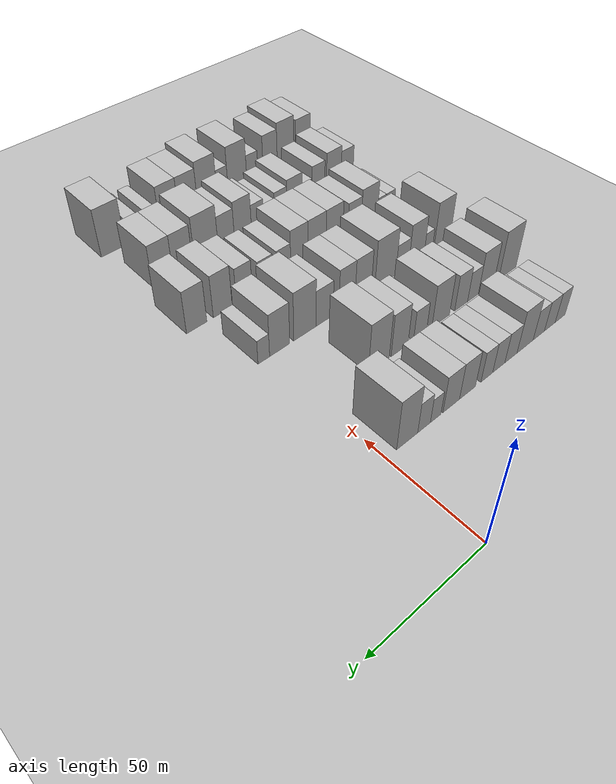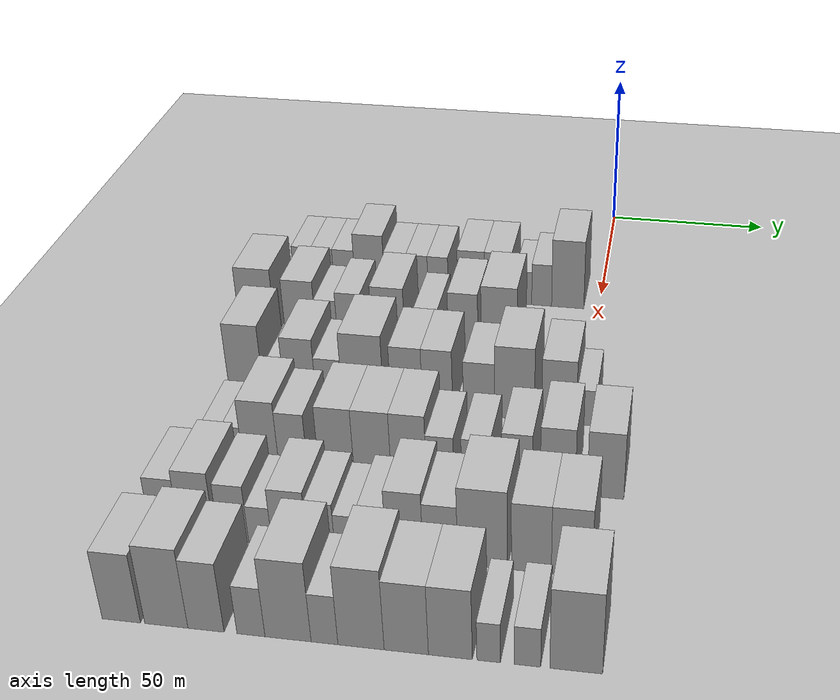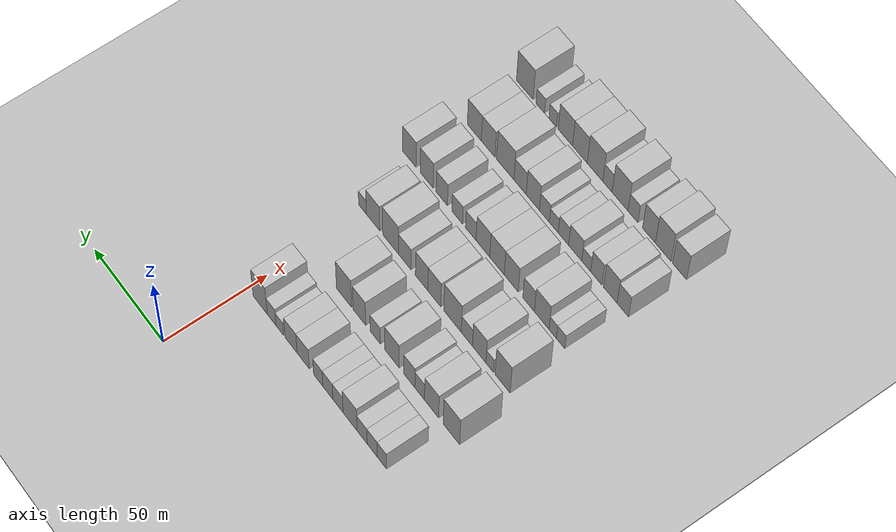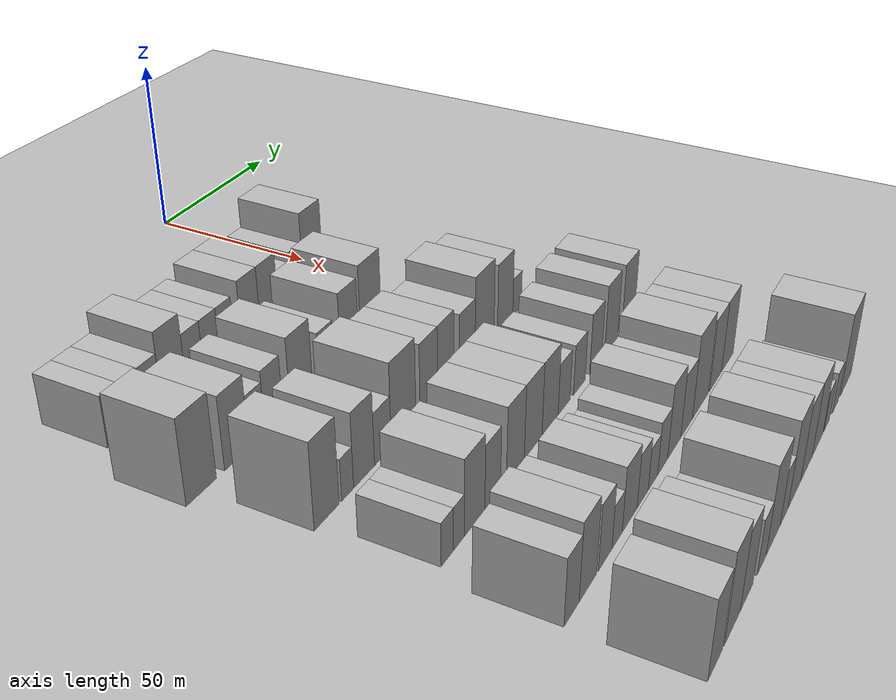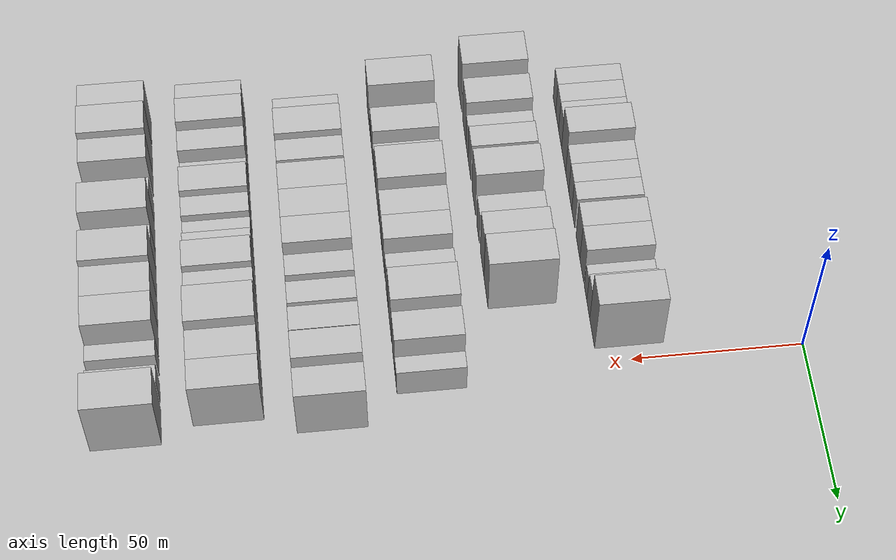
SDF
<sdf version="1.6">
 <world name="default">
  <include><name>ground_plane_1</name><uri>model://HANNAS_ground_plane</uri></include>
  <include>
   <name>ground_plane_2</name>
   <uri>model://HANNAS_ground_plane</uri>
   <pose>100 0 0  0 0 0</pose>
  </include>
  <model name="building_49">
   <static>1</static>
   <pose>50.0000 -92.9644 0 0.000000 0.000000 0.000000</pose>
   <link name="link">
    <pose>0 0 7.50 0 0 0</pose>
    <collision name="collision"><geometry><box><size>20.0000 6.2132 15.0000</size></box></geometry></collision>
    <visual name="visual">
     <cast_shadows>0</cast_shadows>
     <geometry><box><size>20.0000 6.2132 15.0000</size></box></geometry>
     <material>
      <script>
       <uri>model://HANNAS_wall/materials/scripts</uri>
       <uri>model://HANNAS_wall/materials/textures</uri>
       <name>vrc/HANNAS_wall</name>
      </script>
     </material>
    </visual>
   </link>
  </model>
  <model name="building_50">
   <static>1</static>
   <pose>50.0000 -86.5082 0 0.000000 0.000000 0.000000</pose>
   <link name="link">
    <pose>0 0 7.50 0 0 0</pose>
    <collision name="collision"><geometry><box><size>20.0000 6.6991 15.0000</size></box></geometry></collision>
    <visual name="visual">
     <cast_shadows>0</cast_shadows>
     <geometry><box><size>20.0000 6.6991 15.0000</size></box></geometry>
     <material>
      <script>
       <uri>model://HANNAS_wall/materials/scripts</uri>
       <uri>model://HANNAS_wall/materials/textures</uri>
       <name>vrc/HANNAS_wall</name>
      </script>
     </material>
    </visual>
   </link>
  </model>
  <model name="building_51">
   <static>1</static>
   <pose>50.0000 -79.7621 0 0.000000 0.000000 0.000000</pose>
   <link name="link">
    <pose>0 0 7.50 0 0 0</pose>
    <collision name="collision"><geometry><box><size>20.0000 6.7931 15.0000</size></box></geometry></collision>
    <visual name="visual">
     <cast_shadows>0</cast_shadows>
     <geometry><box><size>20.0000 6.7931 15.0000</size></box></geometry>
     <material>
      <script>
       <uri>model://HANNAS_wall/materials/scripts</uri>
       <uri>model://HANNAS_wall/materials/textures</uri>
       <name>vrc/HANNAS_wall</name>
      </script>
     </material>
    </visual>
   </link>
  </model>
  <model name="building_52">
   <static>1</static>
   <pose>50.0000 -71.6376 0 0.000000 0.000000 0.000000</pose>
   <link name="link">
    <pose>0 0 10.50 0 0 0</pose>
    <collision name="collision"><geometry><box><size>20.0000 9.4559 21.0000</size></box></geometry></collision>
    <visual name="visual">
     <cast_shadows>0</cast_shadows>
     <geometry><box><size>20.0000 9.4559 21.0000</size></box></geometry>
     <material>
      <script>
       <uri>model://HANNAS_wall/materials/scripts</uri>
       <uri>model://HANNAS_wall/materials/textures</uri>
       <name>vrc/HANNAS_wall</name>
      </script>
     </material>
    </visual>
   </link>
  </model>
  <model name="building_53">
   <static>1</static>
   <pose>50.0000 -63.3880 0 0.000000 0.000000 0.000000</pose>
   <link name="link">
    <pose>0 0 7.50 0 0 0</pose>
    <collision name="collision"><geometry><box><size>20.0000 7.0434 15.0000</size></box></geometry></collision>
    <visual name="visual">
     <cast_shadows>0</cast_shadows>
     <geometry><box><size>20.0000 7.0434 15.0000</size></box></geometry>
     <material>
      <script>
       <uri>model://HANNAS_wall/materials/scripts</uri>
       <uri>model://HANNAS_wall/materials/textures</uri>
       <name>vrc/HANNAS_wall</name>
      </script>
     </material>
    </visual>
   </link>
  </model>
  <model name="building_54">
   <static>1</static>
   <pose>50.0000 -56.5029 0 0.000000 0.000000 0.000000</pose>
   <link name="link">
    <pose>0 0 7.50 0 0 0</pose>
    <collision name="collision"><geometry><box><size>20.0000 6.7269 15.0000</size></box></geometry></collision>
    <visual name="visual">
     <cast_shadows>0</cast_shadows>
     <geometry><box><size>20.0000 6.7269 15.0000</size></box></geometry>
     <material>
      <script>
       <uri>model://HANNAS_wall/materials/scripts</uri>
       <uri>model://HANNAS_wall/materials/textures</uri>
       <name>vrc/HANNAS_wall</name>
      </script>
     </material>
    </visual>
   </link>
  </model>
  <model name="building_55">
   <static>1</static>
   <pose>50.0000 -49.9407 0 0.000000 0.000000 0.000000</pose>
   <link name="link">
    <pose>0 0 7.50 0 0 0</pose>
    <collision name="collision"><geometry><box><size>20.0000 6.3974 15.0000</size></box></geometry></collision>
    <visual name="visual">
     <cast_shadows>0</cast_shadows>
     <geometry><box><size>20.0000 6.3974 15.0000</size></box></geometry>
     <material>
      <script>
       <uri>model://HANNAS_wall/materials/scripts</uri>
       <uri>model://HANNAS_wall/materials/textures</uri>
       <name>vrc/HANNAS_wall</name>
      </script>
     </material>
    </visual>
   </link>
  </model>
  <model name="building_56">
   <static>1</static>
   <pose>50.0000 -39.5400 0 0.000000 0.000000 0.000000</pose>
   <link name="link">
    <pose>0 0 9.00 0 0 0</pose>
    <collision name="collision"><geometry><box><size>20.0000 8.4040 18.0000</size></box></geometry></collision>
    <visual name="visual">
     <cast_shadows>0</cast_shadows>
     <geometry><box><size>20.0000 8.4040 18.0000</size></box></geometry>
     <material>
      <script>
       <uri>model://HANNAS_wall/materials/scripts</uri>
       <uri>model://HANNAS_wall/materials/textures</uri>
       <name>vrc/HANNAS_wall</name>
      </script>
     </material>
    </visual>
   </link>
  </model>
  <model name="building_57">
   <static>1</static>
   <pose>50.0000 -31.1024 0 0.000000 0.000000 0.000000</pose>
   <link name="link">
    <pose>0 0 9.00 0 0 0</pose>
    <collision name="collision"><geometry><box><size>20.0000 8.4711 18.0000</size></box></geometry></collision>
    <visual name="visual">
     <cast_shadows>0</cast_shadows>
     <geometry><box><size>20.0000 8.4711 18.0000</size></box></geometry>
     <material>
      <script>
       <uri>model://HANNAS_wall/materials/scripts</uri>
       <uri>model://HANNAS_wall/materials/textures</uri>
       <name>vrc/HANNAS_wall</name>
      </script>
     </material>
    </visual>
   </link>
  </model>
  <model name="building_58">
   <static>1</static>
   <pose>50.0000 -23.2524 0 0.000000 0.000000 0.000000</pose>
   <link name="link">
    <pose>0 0 6.00 0 0 0</pose>
    <collision name="collision"><geometry><box><size>20.0000 5.2289 12.0000</size></box></geometry></collision>
    <visual name="visual">
     <cast_shadows>0</cast_shadows>
     <geometry><box><size>20.0000 5.2289 12.0000</size></box></geometry>
     <material>
      <script>
       <uri>model://HANNAS_wall/materials/scripts</uri>
       <uri>model://HANNAS_wall/materials/textures</uri>
       <name>vrc/HANNAS_wall</name>
      </script>
     </material>
    </visual>
   </link>
  </model>
  <model name="building_59">
   <static>1</static>
   <pose>50.0000 -17.5474 0 0.000000 0.000000 0.000000</pose>
   <link name="link">
    <pose>0 0 7.50 0 0 0</pose>
    <collision name="collision"><geometry><box><size>20.0000 6.1810 15.0000</size></box></geometry></collision>
    <visual name="visual">
     <cast_shadows>0</cast_shadows>
     <geometry><box><size>20.0000 6.1810 15.0000</size></box></geometry>
     <material>
      <script>
       <uri>model://HANNAS_wall/materials/scripts</uri>
       <uri>model://HANNAS_wall/materials/textures</uri>
       <name>vrc/HANNAS_wall</name>
      </script>
     </material>
    </visual>
   </link>
  </model>
  <model name="building_60">
   <static>1</static>
   <pose>50.0000 -9.4774 0 0.000000 0.000000 0.000000</pose>
   <link name="link">
    <pose>0 0 12.00 0 0 0</pose>
    <collision name="collision"><geometry><box><size>20.0000 9.9591 24.0000</size></box></geometry></collision>
    <visual name="visual">
     <cast_shadows>0</cast_shadows>
     <geometry><box><size>20.0000 9.9591 24.0000</size></box></geometry>
     <material>
      <script>
       <uri>model://HANNAS_wall/materials/scripts</uri>
       <uri>model://HANNAS_wall/materials/textures</uri>
       <name>vrc/HANNAS_wall</name>
      </script>
     </material>
    </visual>
   </link>
  </model>
  <model name="building_158">
   <static>1</static>
   <pose>79.0000 -98.8888 0 0.000000 0.000000 0.000000</pose>
   <link name="link">
    <pose>0 0 12.00 0 0 0</pose>
    <collision name="collision"><geometry><box><size>20.0000 10.8942 24.0000</size></box></geometry></collision>
    <visual name="visual">
     <cast_shadows>0</cast_shadows>
     <geometry><box><size>20.0000 10.8942 24.0000</size></box></geometry>
     <material>
      <script>
       <uri>model://HANNAS_wall/materials/scripts</uri>
       <uri>model://HANNAS_wall/materials/textures</uri>
       <name>vrc/HANNAS_wall</name>
      </script>
     </material>
    </visual>
   </link>
  </model>
  <model name="building_159">
   <static>1</static>
   <pose>79.0000 -85.7172 0 0.000000 0.000000 0.000000</pose>
   <link name="link">
    <pose>0 0 10.50 0 0 0</pose>
    <collision name="collision"><geometry><box><size>20.0000 9.4490 21.0000</size></box></geometry></collision>
    <visual name="visual">
     <cast_shadows>0</cast_shadows>
     <geometry><box><size>20.0000 9.4490 21.0000</size></box></geometry>
     <material>
      <script>
       <uri>model://HANNAS_wall/materials/scripts</uri>
       <uri>model://HANNAS_wall/materials/textures</uri>
       <name>vrc/HANNAS_wall</name>
      </script>
     </material>
    </visual>
   </link>
  </model>
  <model name="building_160">
   <static>1</static>
   <pose>79.0000 -77.7707 0 0.000000 0.000000 0.000000</pose>
   <link name="link">
    <pose>0 0 7.50 0 0 0</pose>
    <collision name="collision"><geometry><box><size>20.0000 6.4439 15.0000</size></box></geometry></collision>
    <visual name="visual">
     <cast_shadows>0</cast_shadows>
     <geometry><box><size>20.0000 6.4439 15.0000</size></box></geometry>
     <material>
      <script>
       <uri>model://HANNAS_wall/materials/scripts</uri>
       <uri>model://HANNAS_wall/materials/textures</uri>
       <name>vrc/HANNAS_wall</name>
      </script>
     </material>
    </visual>
   </link>
  </model>
  <model name="building_161">
   <static>1</static>
   <pose>79.0000 -70.8007 0 0.000000 0.000000 0.000000</pose>
   <link name="link">
    <pose>0 0 9.00 0 0 0</pose>
    <collision name="collision"><geometry><box><size>20.0000 7.4960 18.0000</size></box></geometry></collision>
    <visual name="visual">
     <cast_shadows>0</cast_shadows>
     <geometry><box><size>20.0000 7.4960 18.0000</size></box></geometry>
     <material>
      <script>
       <uri>model://HANNAS_wall/materials/scripts</uri>
       <uri>model://HANNAS_wall/materials/textures</uri>
       <name>vrc/HANNAS_wall</name>
      </script>
     </material>
    </visual>
   </link>
  </model>
  <model name="building_162">
   <static>1</static>
   <pose>79.0000 -59.1441 0 0.000000 0.000000 0.000000</pose>
   <link name="link">
    <pose>0 0 10.50 0 0 0</pose>
    <collision name="collision"><geometry><box><size>20.0000 9.8173 21.0000</size></box></geometry></collision>
    <visual name="visual">
     <cast_shadows>0</cast_shadows>
     <geometry><box><size>20.0000 9.8173 21.0000</size></box></geometry>
     <material>
      <script>
       <uri>model://HANNAS_wall/materials/scripts</uri>
       <uri>model://HANNAS_wall/materials/textures</uri>
       <name>vrc/HANNAS_wall</name>
      </script>
     </material>
    </visual>
   </link>
  </model>
  <model name="building_163">
   <static>1</static>
   <pose>79.0000 -47.7386 0 0.000000 0.000000 0.000000</pose>
   <link name="link">
    <pose>0 0 7.50 0 0 0</pose>
    <collision name="collision"><geometry><box><size>20.0000 6.9936 15.0000</size></box></geometry></collision>
    <visual name="visual">
     <cast_shadows>0</cast_shadows>
     <geometry><box><size>20.0000 6.9936 15.0000</size></box></geometry>
     <material>
      <script>
       <uri>model://HANNAS_wall/materials/scripts</uri>
       <uri>model://HANNAS_wall/materials/textures</uri>
       <name>vrc/HANNAS_wall</name>
      </script>
     </material>
    </visual>
   </link>
  </model>
  <model name="building_164">
   <static>1</static>
   <pose>79.0000 -36.8692 0 0.000000 0.000000 0.000000</pose>
   <link name="link">
    <pose>0 0 10.50 0 0 0</pose>
    <collision name="collision"><geometry><box><size>20.0000 8.7453 21.0000</size></box></geometry></collision>
    <visual name="visual">
     <cast_shadows>0</cast_shadows>
     <geometry><box><size>20.0000 8.7453 21.0000</size></box></geometry>
     <material>
      <script>
       <uri>model://HANNAS_wall/materials/scripts</uri>
       <uri>model://HANNAS_wall/materials/textures</uri>
       <name>vrc/HANNAS_wall</name>
      </script>
     </material>
    </visual>
   </link>
  </model>
  <model name="building_165">
   <static>1</static>
   <pose>79.0000 -26.2557 0 0.000000 0.000000 0.000000</pose>
   <link name="link">
    <pose>0 0 12.00 0 0 0</pose>
    <collision name="collision"><geometry><box><size>20.0000 10.4818 24.0000</size></box></geometry></collision>
    <visual name="visual">
     <cast_shadows>0</cast_shadows>
     <geometry><box><size>20.0000 10.4818 24.0000</size></box></geometry>
     <material>
      <script>
       <uri>model://HANNAS_wall/materials/scripts</uri>
       <uri>model://HANNAS_wall/materials/textures</uri>
       <name>vrc/HANNAS_wall</name>
      </script>
     </material>
    </visual>
   </link>
  </model>
  <model name="building_271">
   <static>1</static>
   <pose>108.0000 -93.1842 0 0.000000 0.000000 0.000000</pose>
   <link name="link">
    <pose>0 0 12.00 0 0 0</pose>
    <collision name="collision"><geometry><box><size>20.0000 9.9518 24.0000</size></box></geometry></collision>
    <visual name="visual">
     <cast_shadows>0</cast_shadows>
     <geometry><box><size>20.0000 9.9518 24.0000</size></box></geometry>
     <material>
      <script>
       <uri>model://HANNAS_wall/materials/scripts</uri>
       <uri>model://HANNAS_wall/materials/textures</uri>
       <name>vrc/HANNAS_wall</name>
      </script>
     </material>
    </visual>
   </link>
  </model>
  <model name="building_272">
   <static>1</static>
   <pose>108.0000 -84.7185 0 0.000000 0.000000 0.000000</pose>
   <link name="link">
    <pose>0 0 6.00 0 0 0</pose>
    <collision name="collision"><geometry><box><size>20.0000 4.9796 12.0000</size></box></geometry></collision>
    <visual name="visual">
     <cast_shadows>0</cast_shadows>
     <geometry><box><size>20.0000 4.9796 12.0000</size></box></geometry>
     <material>
      <script>
       <uri>model://HANNAS_wall/materials/scripts</uri>
       <uri>model://HANNAS_wall/materials/textures</uri>
       <name>vrc/HANNAS_wall</name>
      </script>
     </material>
    </visual>
   </link>
  </model>
  <model name="building_273">
   <static>1</static>
   <pose>108.0000 -77.7076 0 0.000000 0.000000 0.000000</pose>
   <link name="link">
    <pose>0 0 10.50 0 0 0</pose>
    <collision name="collision"><geometry><box><size>20.0000 9.0422 21.0000</size></box></geometry></collision>
    <visual name="visual">
     <cast_shadows>0</cast_shadows>
     <geometry><box><size>20.0000 9.0422 21.0000</size></box></geometry>
     <material>
      <script>
       <uri>model://HANNAS_wall/materials/scripts</uri>
       <uri>model://HANNAS_wall/materials/textures</uri>
       <name>vrc/HANNAS_wall</name>
      </script>
     </material>
    </visual>
   </link>
  </model>
  <model name="building_274">
   <static>1</static>
   <pose>108.0000 -69.4448 0 0.000000 0.000000 0.000000</pose>
   <link name="link">
    <pose>0 0 7.50 0 0 0</pose>
    <collision name="collision"><geometry><box><size>20.0000 7.4834 15.0000</size></box></geometry></collision>
    <visual name="visual">
     <cast_shadows>0</cast_shadows>
     <geometry><box><size>20.0000 7.4834 15.0000</size></box></geometry>
     <material>
      <script>
       <uri>model://HANNAS_wall/materials/scripts</uri>
       <uri>model://HANNAS_wall/materials/textures</uri>
       <name>vrc/HANNAS_wall</name>
      </script>
     </material>
    </visual>
   </link>
  </model>
  <model name="building_275">
   <static>1</static>
   <pose>108.0000 -59.8322 0 0.000000 0.000000 0.000000</pose>
   <link name="link">
    <pose>0 0 12.00 0 0 0</pose>
    <collision name="collision"><geometry><box><size>20.0000 11.7417 24.0000</size></box></geometry></collision>
    <visual name="visual">
     <cast_shadows>0</cast_shadows>
     <geometry><box><size>20.0000 11.7417 24.0000</size></box></geometry>
     <material>
      <script>
       <uri>model://HANNAS_wall/materials/scripts</uri>
       <uri>model://HANNAS_wall/materials/textures</uri>
       <name>vrc/HANNAS_wall</name>
      </script>
     </material>
    </visual>
   </link>
  </model>
  <model name="building_276">
   <static>1</static>
   <pose>108.0000 -47.5432 0 0.000000 0.000000 0.000000</pose>
   <link name="link">
    <pose>0 0 10.50 0 0 0</pose>
    <collision name="collision"><geometry><box><size>20.0000 8.8365 21.0000</size></box></geometry></collision>
    <visual name="visual">
     <cast_shadows>0</cast_shadows>
     <geometry><box><size>20.0000 8.8365 21.0000</size></box></geometry>
     <material>
      <script>
       <uri>model://HANNAS_wall/materials/scripts</uri>
       <uri>model://HANNAS_wall/materials/textures</uri>
       <name>vrc/HANNAS_wall</name>
      </script>
     </material>
    </visual>
   </link>
  </model>
  <model name="building_277">
   <static>1</static>
   <pose>108.0000 -38.8959 0 0.000000 0.000000 0.000000</pose>
   <link name="link">
    <pose>0 0 10.50 0 0 0</pose>
    <collision name="collision"><geometry><box><size>20.0000 8.4581 21.0000</size></box></geometry></collision>
    <visual name="visual">
     <cast_shadows>0</cast_shadows>
     <geometry><box><size>20.0000 8.4581 21.0000</size></box></geometry>
     <material>
      <script>
       <uri>model://HANNAS_wall/materials/scripts</uri>
       <uri>model://HANNAS_wall/materials/textures</uri>
       <name>vrc/HANNAS_wall</name>
      </script>
     </material>
    </visual>
   </link>
  </model>
  <model name="building_278">
   <static>1</static>
   <pose>108.0000 -27.3365 0 0.000000 0.000000 0.000000</pose>
   <link name="link">
    <pose>0 0 9.00 0 0 0</pose>
    <collision name="collision"><geometry><box><size>20.0000 8.6607 18.0000</size></box></geometry></collision>
    <visual name="visual">
     <cast_shadows>0</cast_shadows>
     <geometry><box><size>20.0000 8.6607 18.0000</size></box></geometry>
     <material>
      <script>
       <uri>model://HANNAS_wall/materials/scripts</uri>
       <uri>model://HANNAS_wall/materials/textures</uri>
       <name>vrc/HANNAS_wall</name>
      </script>
     </material>
    </visual>
   </link>
  </model>
  <model name="building_279">
   <static>1</static>
   <pose>108.0000 -17.5414 0 0.000000 0.000000 0.000000</pose>
   <link name="link">
    <pose>0 0 12.00 0 0 0</pose>
    <collision name="collision"><geometry><box><size>20.0000 10.9293 24.0000</size></box></geometry></collision>
    <visual name="visual">
     <cast_shadows>0</cast_shadows>
     <geometry><box><size>20.0000 10.9293 24.0000</size></box></geometry>
     <material>
      <script>
       <uri>model://HANNAS_wall/materials/scripts</uri>
       <uri>model://HANNAS_wall/materials/textures</uri>
       <name>vrc/HANNAS_wall</name>
      </script>
     </material>
    </visual>
   </link>
  </model>
  <model name="building_280">
   <static>1</static>
   <pose>108.0000 -5.3603 0 0.000000 0.000000 0.000000</pose>
   <link name="link">
    <pose>0 0 10.50 0 0 0</pose>
    <collision name="collision"><geometry><box><size>20.0000 9.4330 21.0000</size></box></geometry></collision>
    <visual name="visual">
     <cast_shadows>0</cast_shadows>
     <geometry><box><size>20.0000 9.4330 21.0000</size></box></geometry>
     <material>
      <script>
       <uri>model://HANNAS_wall/materials/scripts</uri>
       <uri>model://HANNAS_wall/materials/textures</uri>
       <name>vrc/HANNAS_wall</name>
      </script>
     </material>
    </visual>
   </link>
  </model>
  <model name="building_281">
   <static>1</static>
   <pose>108.0000 2.0335 0 0.000000 0.000000 0.000000</pose>
   <link name="link">
    <pose>0 0 6.00 0 0 0</pose>
    <collision name="collision"><geometry><box><size>20.0000 5.3545 12.0000</size></box></geometry></collision>
    <visual name="visual">
     <cast_shadows>0</cast_shadows>
     <geometry><box><size>20.0000 5.3545 12.0000</size></box></geometry>
     <material>
      <script>
       <uri>model://HANNAS_wall/materials/scripts</uri>
       <uri>model://HANNAS_wall/materials/textures</uri>
       <name>vrc/HANNAS_wall</name>
      </script>
     </material>
    </visual>
   </link>
  </model>
  <model name="building_384">
   <static>1</static>
   <pose>137.0000 -92.5873 0 0.000000 0.000000 0.000000</pose>
   <link name="link">
    <pose>0 0 6.00 0 0 0</pose>
    <collision name="collision"><geometry><box><size>20.0000 5.4943 12.0000</size></box></geometry></collision>
    <visual name="visual">
     <cast_shadows>0</cast_shadows>
     <geometry><box><size>20.0000 5.4943 12.0000</size></box></geometry>
     <material>
      <script>
       <uri>model://HANNAS_wall/materials/scripts</uri>
       <uri>model://HANNAS_wall/materials/textures</uri>
       <name>vrc/HANNAS_wall</name>
      </script>
     </material>
    </visual>
   </link>
  </model>
  <model name="building_385">
   <static>1</static>
   <pose>137.0000 -87.4171 0 0.000000 0.000000 0.000000</pose>
   <link name="link">
    <pose>0 0 6.00 0 0 0</pose>
    <collision name="collision"><geometry><box><size>20.0000 4.8461 12.0000</size></box></geometry></collision>
    <visual name="visual">
     <cast_shadows>0</cast_shadows>
     <geometry><box><size>20.0000 4.8461 12.0000</size></box></geometry>
     <material>
      <script>
       <uri>model://HANNAS_wall/materials/scripts</uri>
       <uri>model://HANNAS_wall/materials/textures</uri>
       <name>vrc/HANNAS_wall</name>
      </script>
     </material>
    </visual>
   </link>
  </model>
  <model name="building_386">
   <static>1</static>
   <pose>137.0000 -80.1581 0 0.000000 0.000000 0.000000</pose>
   <link name="link">
    <pose>0 0 10.50 0 0 0</pose>
    <collision name="collision"><geometry><box><size>20.0000 9.6720 21.0000</size></box></geometry></collision>
    <visual name="visual">
     <cast_shadows>0</cast_shadows>
     <geometry><box><size>20.0000 9.6720 21.0000</size></box></geometry>
     <material>
      <script>
       <uri>model://HANNAS_wall/materials/scripts</uri>
       <uri>model://HANNAS_wall/materials/textures</uri>
       <name>vrc/HANNAS_wall</name>
      </script>
     </material>
    </visual>
   </link>
  </model>
  <model name="building_387">
   <static>1</static>
   <pose>137.0000 -71.4849 0 0.000000 0.000000 0.000000</pose>
   <link name="link">
    <pose>0 0 9.00 0 0 0</pose>
    <collision name="collision"><geometry><box><size>20.0000 7.6743 18.0000</size></box></geometry></collision>
    <visual name="visual">
     <cast_shadows>0</cast_shadows>
     <geometry><box><size>20.0000 7.6743 18.0000</size></box></geometry>
     <material>
      <script>
       <uri>model://HANNAS_wall/materials/scripts</uri>
       <uri>model://HANNAS_wall/materials/textures</uri>
       <name>vrc/HANNAS_wall</name>
      </script>
     </material>
    </visual>
   </link>
  </model>
  <model name="building_388">
   <static>1</static>
   <pose>137.0000 -59.9519 0 0.000000 0.000000 0.000000</pose>
   <link name="link">
    <pose>0 0 10.50 0 0 0</pose>
    <collision name="collision"><geometry><box><size>20.0000 9.3918 21.0000</size></box></geometry></collision>
    <visual name="visual">
     <cast_shadows>0</cast_shadows>
     <geometry><box><size>20.0000 9.3918 21.0000</size></box></geometry>
     <material>
      <script>
       <uri>model://HANNAS_wall/materials/scripts</uri>
       <uri>model://HANNAS_wall/materials/textures</uri>
       <name>vrc/HANNAS_wall</name>
      </script>
     </material>
    </visual>
   </link>
  </model>
  <model name="building_389">
   <static>1</static>
   <pose>137.0000 -50.3580 0 0.000000 0.000000 0.000000</pose>
   <link name="link">
    <pose>0 0 10.50 0 0 0</pose>
    <collision name="collision"><geometry><box><size>20.0000 9.7960 21.0000</size></box></geometry></collision>
    <visual name="visual">
     <cast_shadows>0</cast_shadows>
     <geometry><box><size>20.0000 9.7960 21.0000</size></box></geometry>
     <material>
      <script>
       <uri>model://HANNAS_wall/materials/scripts</uri>
       <uri>model://HANNAS_wall/materials/textures</uri>
       <name>vrc/HANNAS_wall</name>
      </script>
     </material>
    </visual>
   </link>
  </model>
  <model name="building_390">
   <static>1</static>
   <pose>137.0000 -40.8339 0 0.000000 0.000000 0.000000</pose>
   <link name="link">
    <pose>0 0 10.50 0 0 0</pose>
    <collision name="collision"><geometry><box><size>20.0000 9.2523 21.0000</size></box></geometry></collision>
    <visual name="visual">
     <cast_shadows>0</cast_shadows>
     <geometry><box><size>20.0000 9.2523 21.0000</size></box></geometry>
     <material>
      <script>
       <uri>model://HANNAS_wall/materials/scripts</uri>
       <uri>model://HANNAS_wall/materials/textures</uri>
       <name>vrc/HANNAS_wall</name>
      </script>
     </material>
    </visual>
   </link>
  </model>
  <model name="building_391">
   <static>1</static>
   <pose>137.0000 -32.6049 0 0.000000 0.000000 0.000000</pose>
   <link name="link">
    <pose>0 0 7.50 0 0 0</pose>
    <collision name="collision"><geometry><box><size>20.0000 7.2056 15.0000</size></box></geometry></collision>
    <visual name="visual">
     <cast_shadows>0</cast_shadows>
     <geometry><box><size>20.0000 7.2056 15.0000</size></box></geometry>
     <material>
      <script>
       <uri>model://HANNAS_wall/materials/scripts</uri>
       <uri>model://HANNAS_wall/materials/textures</uri>
       <name>vrc/HANNAS_wall</name>
      </script>
     </material>
    </visual>
   </link>
  </model>
  <model name="building_392">
   <static>1</static>
   <pose>137.0000 -23.3227 0 0.000000 0.000000 0.000000</pose>
   <link name="link">
    <pose>0 0 7.50 0 0 0</pose>
    <collision name="collision"><geometry><box><size>20.0000 7.3588 15.0000</size></box></geometry></collision>
    <visual name="visual">
     <cast_shadows>0</cast_shadows>
     <geometry><box><size>20.0000 7.3588 15.0000</size></box></geometry>
     <material>
      <script>
       <uri>model://HANNAS_wall/materials/scripts</uri>
       <uri>model://HANNAS_wall/materials/textures</uri>
       <name>vrc/HANNAS_wall</name>
      </script>
     </material>
    </visual>
   </link>
  </model>
  <model name="building_393">
   <static>1</static>
   <pose>137.0000 -12.7158 0 0.000000 0.000000 0.000000</pose>
   <link name="link">
    <pose>0 0 9.00 0 0 0</pose>
    <collision name="collision"><geometry><box><size>20.0000 7.8552 18.0000</size></box></geometry></collision>
    <visual name="visual">
     <cast_shadows>0</cast_shadows>
     <geometry><box><size>20.0000 7.8552 18.0000</size></box></geometry>
     <material>
      <script>
       <uri>model://HANNAS_wall/materials/scripts</uri>
       <uri>model://HANNAS_wall/materials/textures</uri>
       <name>vrc/HANNAS_wall</name>
      </script>
     </material>
    </visual>
   </link>
  </model>
  <model name="building_394">
   <static>1</static>
   <pose>137.0000 -2.3082 0 0.000000 0.000000 0.000000</pose>
   <link name="link">
    <pose>0 0 10.50 0 0 0</pose>
    <collision name="collision"><geometry><box><size>20.0000 8.9599 21.0000</size></box></geometry></collision>
    <visual name="visual">
     <cast_shadows>0</cast_shadows>
     <geometry><box><size>20.0000 8.9599 21.0000</size></box></geometry>
     <material>
      <script>
       <uri>model://HANNAS_wall/materials/scripts</uri>
       <uri>model://HANNAS_wall/materials/textures</uri>
       <name>vrc/HANNAS_wall</name>
      </script>
     </material>
    </visual>
   </link>
  </model>
  <model name="building_395">
   <static>1</static>
   <pose>137.0000 9.8169 0 0.000000 0.000000 0.000000</pose>
   <link name="link">
    <pose>0 0 10.50 0 0 0</pose>
    <collision name="collision"><geometry><box><size>20.0000 9.2904 21.0000</size></box></geometry></collision>
    <visual name="visual">
     <cast_shadows>0</cast_shadows>
     <geometry><box><size>20.0000 9.2904 21.0000</size></box></geometry>
     <material>
      <script>
       <uri>model://HANNAS_wall/materials/scripts</uri>
       <uri>model://HANNAS_wall/materials/textures</uri>
       <name>vrc/HANNAS_wall</name>
      </script>
     </material>
    </visual>
   </link>
  </model>
  <model name="building_499">
   <static>1</static>
   <pose>166.0000 -95.3388 0 0.000000 0.000000 0.000000</pose>
   <link name="link">
    <pose>0 0 9.00 0 0 0</pose>
    <collision name="collision"><geometry><box><size>20.0000 7.4858 18.0000</size></box></geometry></collision>
    <visual name="visual">
     <cast_shadows>0</cast_shadows>
     <geometry><box><size>20.0000 7.4858 18.0000</size></box></geometry>
     <material>
      <script>
       <uri>model://HANNAS_wall/materials/scripts</uri>
       <uri>model://HANNAS_wall/materials/textures</uri>
       <name>vrc/HANNAS_wall</name>
      </script>
     </material>
    </visual>
   </link>
  </model>
  <model name="building_500">
   <static>1</static>
   <pose>166.0000 -87.1419 0 0.000000 0.000000 0.000000</pose>
   <link name="link">
    <pose>0 0 10.50 0 0 0</pose>
    <collision name="collision"><geometry><box><size>20.0000 8.9080 21.0000</size></box></geometry></collision>
    <visual name="visual">
     <cast_shadows>0</cast_shadows>
     <geometry><box><size>20.0000 8.9080 21.0000</size></box></geometry>
     <material>
      <script>
       <uri>model://HANNAS_wall/materials/scripts</uri>
       <uri>model://HANNAS_wall/materials/textures</uri>
       <name>vrc/HANNAS_wall</name>
      </script>
     </material>
    </visual>
   </link>
  </model>
  <model name="building_501">
   <static>1</static>
   <pose>166.0000 -77.9670 0 0.000000 0.000000 0.000000</pose>
   <link name="link">
    <pose>0 0 9.00 0 0 0</pose>
    <collision name="collision"><geometry><box><size>20.0000 7.4417 18.0000</size></box></geometry></collision>
    <visual name="visual">
     <cast_shadows>0</cast_shadows>
     <geometry><box><size>20.0000 7.4417 18.0000</size></box></geometry>
     <material>
      <script>
       <uri>model://HANNAS_wall/materials/scripts</uri>
       <uri>model://HANNAS_wall/materials/textures</uri>
       <name>vrc/HANNAS_wall</name>
      </script>
     </material>
    </visual>
   </link>
  </model>
  <model name="building_502">
   <static>1</static>
   <pose>166.0000 -71.3276 0 0.000000 0.000000 0.000000</pose>
   <link name="link">
    <pose>0 0 6.00 0 0 0</pose>
    <collision name="collision"><geometry><box><size>20.0000 5.8372 12.0000</size></box></geometry></collision>
    <visual name="visual">
     <cast_shadows>0</cast_shadows>
     <geometry><box><size>20.0000 5.8372 12.0000</size></box></geometry>
     <material>
      <script>
       <uri>model://HANNAS_wall/materials/scripts</uri>
       <uri>model://HANNAS_wall/materials/textures</uri>
       <name>vrc/HANNAS_wall</name>
      </script>
     </material>
    </visual>
   </link>
  </model>
  <model name="building_503">
   <static>1</static>
   <pose>166.0000 -64.0204 0 0.000000 0.000000 0.000000</pose>
   <link name="link">
    <pose>0 0 9.00 0 0 0</pose>
    <collision name="collision"><geometry><box><size>20.0000 8.7773 18.0000</size></box></geometry></collision>
    <visual name="visual">
     <cast_shadows>0</cast_shadows>
     <geometry><box><size>20.0000 8.7773 18.0000</size></box></geometry>
     <material>
      <script>
       <uri>model://HANNAS_wall/materials/scripts</uri>
       <uri>model://HANNAS_wall/materials/textures</uri>
       <name>vrc/HANNAS_wall</name>
      </script>
     </material>
    </visual>
   </link>
  </model>
  <model name="building_504">
   <static>1</static>
   <pose>166.0000 -56.2025 0 0.000000 0.000000 0.000000</pose>
   <link name="link">
    <pose>0 0 7.50 0 0 0</pose>
    <collision name="collision"><geometry><box><size>20.0000 6.8584 15.0000</size></box></geometry></collision>
    <visual name="visual">
     <cast_shadows>0</cast_shadows>
     <geometry><box><size>20.0000 6.8584 15.0000</size></box></geometry>
     <material>
      <script>
       <uri>model://HANNAS_wall/materials/scripts</uri>
       <uri>model://HANNAS_wall/materials/textures</uri>
       <name>vrc/HANNAS_wall</name>
      </script>
     </material>
    </visual>
   </link>
  </model>
  <model name="building_505">
   <static>1</static>
   <pose>166.0000 -49.7842 0 0.000000 0.000000 0.000000</pose>
   <link name="link">
    <pose>0 0 6.00 0 0 0</pose>
    <collision name="collision"><geometry><box><size>20.0000 5.9781 12.0000</size></box></geometry></collision>
    <visual name="visual">
     <cast_shadows>0</cast_shadows>
     <geometry><box><size>20.0000 5.9781 12.0000</size></box></geometry>
     <material>
      <script>
       <uri>model://HANNAS_wall/materials/scripts</uri>
       <uri>model://HANNAS_wall/materials/textures</uri>
       <name>vrc/HANNAS_wall</name>
      </script>
     </material>
    </visual>
   </link>
  </model>
  <model name="building_506">
   <static>1</static>
   <pose>166.0000 -43.4729 0 0.000000 0.000000 0.000000</pose>
   <link name="link">
    <pose>0 0 7.50 0 0 0</pose>
    <collision name="collision"><geometry><box><size>20.0000 6.6446 15.0000</size></box></geometry></collision>
    <visual name="visual">
     <cast_shadows>0</cast_shadows>
     <geometry><box><size>20.0000 6.6446 15.0000</size></box></geometry>
     <material>
      <script>
       <uri>model://HANNAS_wall/materials/scripts</uri>
       <uri>model://HANNAS_wall/materials/textures</uri>
       <name>vrc/HANNAS_wall</name>
      </script>
     </material>
    </visual>
   </link>
  </model>
  <model name="building_507">
   <static>1</static>
   <pose>166.0000 -35.6585 0 0.000000 0.000000 0.000000</pose>
   <link name="link">
    <pose>0 0 10.50 0 0 0</pose>
    <collision name="collision"><geometry><box><size>20.0000 8.9841 21.0000</size></box></geometry></collision>
    <visual name="visual">
     <cast_shadows>0</cast_shadows>
     <geometry><box><size>20.0000 8.9841 21.0000</size></box></geometry>
     <material>
      <script>
       <uri>model://HANNAS_wall/materials/scripts</uri>
       <uri>model://HANNAS_wall/materials/textures</uri>
       <name>vrc/HANNAS_wall</name>
      </script>
     </material>
    </visual>
   </link>
  </model>
  <model name="building_508">
   <static>1</static>
   <pose>166.0000 -26.9815 0 0.000000 0.000000 0.000000</pose>
   <link name="link">
    <pose>0 0 9.00 0 0 0</pose>
    <collision name="collision"><geometry><box><size>20.0000 8.3699 18.0000</size></box></geometry></collision>
    <visual name="visual">
     <cast_shadows>0</cast_shadows>
     <geometry><box><size>20.0000 8.3699 18.0000</size></box></geometry>
     <material>
      <script>
       <uri>model://HANNAS_wall/materials/scripts</uri>
       <uri>model://HANNAS_wall/materials/textures</uri>
       <name>vrc/HANNAS_wall</name>
      </script>
     </material>
    </visual>
   </link>
  </model>
  <model name="building_509">
   <static>1</static>
   <pose>166.0000 -16.8558 0 0.000000 0.000000 0.000000</pose>
   <link name="link">
    <pose>0 0 12.00 0 0 0</pose>
    <collision name="collision"><geometry><box><size>20.0000 11.8815 24.0000</size></box></geometry></collision>
    <visual name="visual">
     <cast_shadows>0</cast_shadows>
     <geometry><box><size>20.0000 11.8815 24.0000</size></box></geometry>
     <material>
      <script>
       <uri>model://HANNAS_wall/materials/scripts</uri>
       <uri>model://HANNAS_wall/materials/textures</uri>
       <name>vrc/HANNAS_wall</name>
      </script>
     </material>
    </visual>
   </link>
  </model>
  <model name="building_510">
   <static>1</static>
   <pose>166.0000 -5.1678 0 0.000000 0.000000 0.000000</pose>
   <link name="link">
    <pose>0 0 10.50 0 0 0</pose>
    <collision name="collision"><geometry><box><size>20.0000 9.4944 21.0000</size></box></geometry></collision>
    <visual name="visual">
     <cast_shadows>0</cast_shadows>
     <geometry><box><size>20.0000 9.4944 21.0000</size></box></geometry>
     <material>
      <script>
       <uri>model://HANNAS_wall/materials/scripts</uri>
       <uri>model://HANNAS_wall/materials/textures</uri>
       <name>vrc/HANNAS_wall</name>
      </script>
     </material>
    </visual>
   </link>
  </model>
  <model name="building_511">
   <static>1</static>
   <pose>166.0000 4.4108 0 0.000000 0.000000 0.000000</pose>
   <link name="link">
    <pose>0 0 10.50 0 0 0</pose>
    <collision name="collision"><geometry><box><size>20.0000 9.6629 21.0000</size></box></geometry></collision>
    <visual name="visual">
     <cast_shadows>0</cast_shadows>
     <geometry><box><size>20.0000 9.6629 21.0000</size></box></geometry>
     <material>
      <script>
       <uri>model://HANNAS_wall/materials/scripts</uri>
       <uri>model://HANNAS_wall/materials/textures</uri>
       <name>vrc/HANNAS_wall</name>
      </script>
     </material>
    </visual>
   </link>
  </model>
  <model name="building_613">
   <static>1</static>
   <pose>195.0000 -94.9403 0 0.000000 0.000000 0.000000</pose>
   <link name="link">
    <pose>0 0 10.50 0 0 0</pose>
    <collision name="collision"><geometry><box><size>20.0000 9.0647 21.0000</size></box></geometry></collision>
    <visual name="visual">
     <cast_shadows>0</cast_shadows>
     <geometry><box><size>20.0000 9.0647 21.0000</size></box></geometry>
     <material>
      <script>
       <uri>model://HANNAS_wall/materials/scripts</uri>
       <uri>model://HANNAS_wall/materials/textures</uri>
       <name>vrc/HANNAS_wall</name>
      </script>
     </material>
    </visual>
   </link>
  </model>
  <model name="building_614">
   <static>1</static>
   <pose>195.0000 -84.3276 0 0.000000 0.000000 0.000000</pose>
   <link name="link">
    <pose>0 0 12.00 0 0 0</pose>
    <collision name="collision"><geometry><box><size>20.0000 10.1607 24.0000</size></box></geometry></collision>
    <visual name="visual">
     <cast_shadows>0</cast_shadows>
     <geometry><box><size>20.0000 10.1607 24.0000</size></box></geometry>
     <material>
      <script>
       <uri>model://HANNAS_wall/materials/scripts</uri>
       <uri>model://HANNAS_wall/materials/textures</uri>
       <name>vrc/HANNAS_wall</name>
      </script>
     </material>
    </visual>
   </link>
  </model>
  <model name="building_615">
   <static>1</static>
   <pose>195.0000 -75.0223 0 0.000000 0.000000 0.000000</pose>
   <link name="link">
    <pose>0 0 10.50 0 0 0</pose>
    <collision name="collision"><geometry><box><size>20.0000 8.4499 21.0000</size></box></geometry></collision>
    <visual name="visual">
     <cast_shadows>0</cast_shadows>
     <geometry><box><size>20.0000 8.4499 21.0000</size></box></geometry>
     <material>
      <script>
       <uri>model://HANNAS_wall/materials/scripts</uri>
       <uri>model://HANNAS_wall/materials/textures</uri>
       <name>vrc/HANNAS_wall</name>
      </script>
     </material>
    </visual>
   </link>
  </model>
  <model name="building_616">
   <static>1</static>
   <pose>195.0000 -64.5523 0 0.000000 0.000000 0.000000</pose>
   <link name="link">
    <pose>0 0 7.50 0 0 0</pose>
    <collision name="collision"><geometry><box><size>20.0000 6.4902 15.0000</size></box></geometry></collision>
    <visual name="visual">
     <cast_shadows>0</cast_shadows>
     <geometry><box><size>20.0000 6.4902 15.0000</size></box></geometry>
     <material>
      <script>
       <uri>model://HANNAS_wall/materials/scripts</uri>
       <uri>model://HANNAS_wall/materials/textures</uri>
       <name>vrc/HANNAS_wall</name>
      </script>
     </material>
    </visual>
   </link>
  </model>
  <model name="building_617">
   <static>1</static>
   <pose>195.0000 -56.0032 0 0.000000 0.000000 0.000000</pose>
   <link name="link">
    <pose>0 0 12.00 0 0 0</pose>
    <collision name="collision"><geometry><box><size>20.0000 10.6080 24.0000</size></box></geometry></collision>
    <visual name="visual">
     <cast_shadows>0</cast_shadows>
     <geometry><box><size>20.0000 10.6080 24.0000</size></box></geometry>
     <material>
      <script>
       <uri>model://HANNAS_wall/materials/scripts</uri>
       <uri>model://HANNAS_wall/materials/textures</uri>
       <name>vrc/HANNAS_wall</name>
      </script>
     </material>
    </visual>
   </link>
  </model>
  <model name="building_618">
   <static>1</static>
   <pose>195.0000 -47.6370 0 0.000000 0.000000 0.000000</pose>
   <link name="link">
    <pose>0 0 7.50 0 0 0</pose>
    <collision name="collision"><geometry><box><size>20.0000 6.1243 15.0000</size></box></geometry></collision>
    <visual name="visual">
     <cast_shadows>0</cast_shadows>
     <geometry><box><size>20.0000 6.1243 15.0000</size></box></geometry>
     <material>
      <script>
       <uri>model://HANNAS_wall/materials/scripts</uri>
       <uri>model://HANNAS_wall/materials/textures</uri>
       <name>vrc/HANNAS_wall</name>
      </script>
     </material>
    </visual>
   </link>
  </model>
  <model name="building_619">
   <static>1</static>
   <pose>195.0000 -39.3257 0 0.000000 0.000000 0.000000</pose>
   <link name="link">
    <pose>0 0 12.00 0 0 0</pose>
    <collision name="collision"><geometry><box><size>20.0000 10.4984 24.0000</size></box></geometry></collision>
    <visual name="visual">
     <cast_shadows>0</cast_shadows>
     <geometry><box><size>20.0000 10.4984 24.0000</size></box></geometry>
     <material>
      <script>
       <uri>model://HANNAS_wall/materials/scripts</uri>
       <uri>model://HANNAS_wall/materials/textures</uri>
       <name>vrc/HANNAS_wall</name>
      </script>
     </material>
    </visual>
   </link>
  </model>
  <model name="building_620">
   <static>1</static>
   <pose>195.0000 -29.1012 0 0.000000 0.000000 0.000000</pose>
   <link name="link">
    <pose>0 0 10.50 0 0 0</pose>
    <collision name="collision"><geometry><box><size>20.0000 9.9506 21.0000</size></box></geometry></collision>
    <visual name="visual">
     <cast_shadows>0</cast_shadows>
     <geometry><box><size>20.0000 9.9506 21.0000</size></box></geometry>
     <material>
      <script>
       <uri>model://HANNAS_wall/materials/scripts</uri>
       <uri>model://HANNAS_wall/materials/textures</uri>
       <name>vrc/HANNAS_wall</name>
      </script>
     </material>
    </visual>
   </link>
  </model>
  <model name="building_621">
   <static>1</static>
   <pose>195.0000 -19.2148 0 0.000000 0.000000 0.000000</pose>
   <link name="link">
    <pose>0 0 10.50 0 0 0</pose>
    <collision name="collision"><geometry><box><size>20.0000 9.8222 21.0000</size></box></geometry></collision>
    <visual name="visual">
     <cast_shadows>0</cast_shadows>
     <geometry><box><size>20.0000 9.8222 21.0000</size></box></geometry>
     <material>
      <script>
       <uri>model://HANNAS_wall/materials/scripts</uri>
       <uri>model://HANNAS_wall/materials/textures</uri>
       <name>vrc/HANNAS_wall</name>
      </script>
     </material>
    </visual>
   </link>
  </model>
  <model name="building_622">
   <static>1</static>
   <pose>195.0000 -10.6862 0 0.000000 0.000000 0.000000</pose>
   <link name="link">
    <pose>0 0 6.00 0 0 0</pose>
    <collision name="collision"><geometry><box><size>20.0000 5.2351 12.0000</size></box></geometry></collision>
    <visual name="visual">
     <cast_shadows>0</cast_shadows>
     <geometry><box><size>20.0000 5.2351 12.0000</size></box></geometry>
     <material>
      <script>
       <uri>model://HANNAS_wall/materials/scripts</uri>
       <uri>model://HANNAS_wall/materials/textures</uri>
       <name>vrc/HANNAS_wall</name>
      </script>
     </material>
    </visual>
   </link>
  </model>
  <model name="building_623">
   <static>1</static>
   <pose>195.0000 -2.1385 0 0.000000 0.000000 0.000000</pose>
   <link name="link">
    <pose>0 0 6.00 0 0 0</pose>
    <collision name="collision"><geometry><box><size>20.0000 5.8602 12.0000</size></box></geometry></collision>
    <visual name="visual">
     <cast_shadows>0</cast_shadows>
     <geometry><box><size>20.0000 5.8602 12.0000</size></box></geometry>
     <material>
      <script>
       <uri>model://HANNAS_wall/materials/scripts</uri>
       <uri>model://HANNAS_wall/materials/textures</uri>
       <name>vrc/HANNAS_wall</name>
      </script>
     </material>
    </visual>
   </link>
  </model>
  <model name="building_624">
   <static>1</static>
   <pose>195.0000 8.5596 0 0.000000 0.000000 0.000000</pose>
   <link name="link">
    <pose>0 0 12.00 0 0 0</pose>
    <collision name="collision"><geometry><box><size>20.0000 11.5360 24.0000</size></box></geometry></collision>
    <visual name="visual">
     <cast_shadows>0</cast_shadows>
     <geometry><box><size>20.0000 11.5360 24.0000</size></box></geometry>
     <material>
      <script>
       <uri>model://HANNAS_wall/materials/scripts</uri>
       <uri>model://HANNAS_wall/materials/textures</uri>
       <name>vrc/HANNAS_wall</name>
      </script>
     </material>
    </visual>
   </link>
  </model>
 </world>
</sdf>
